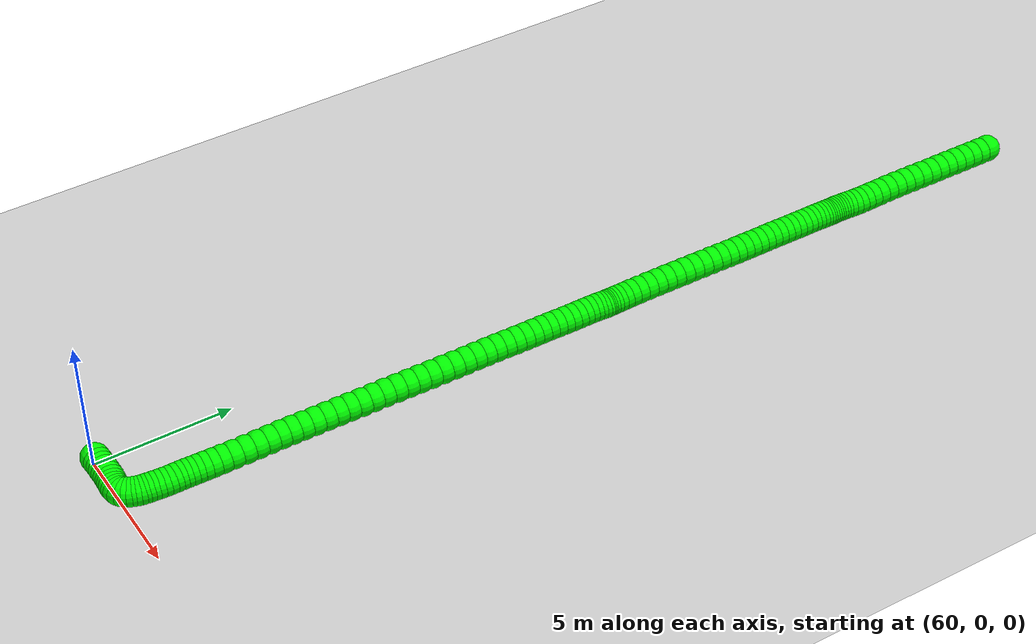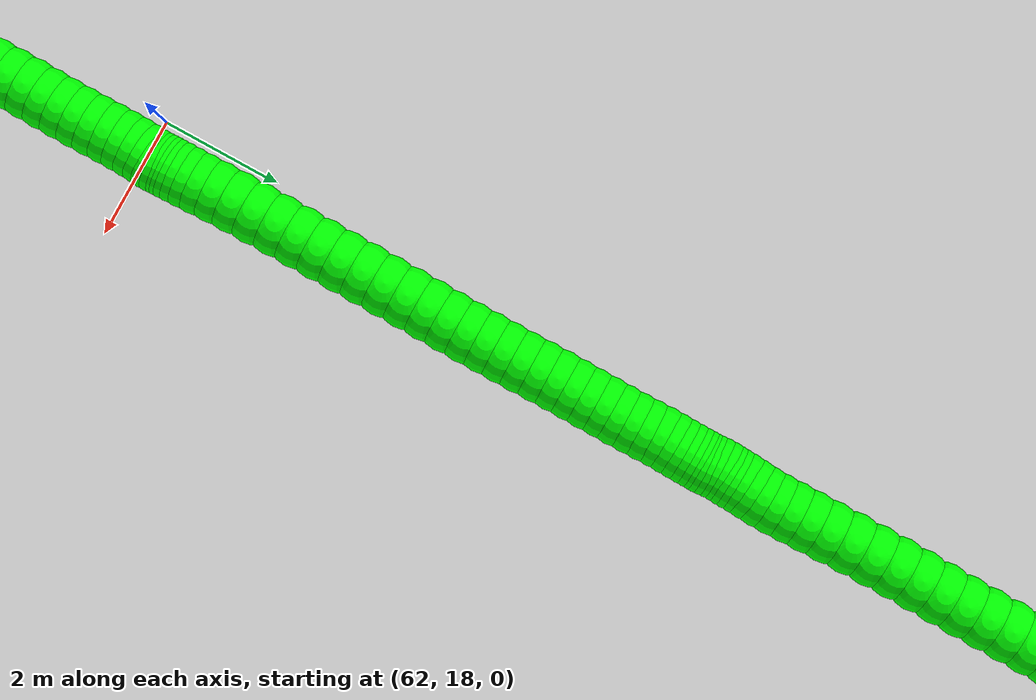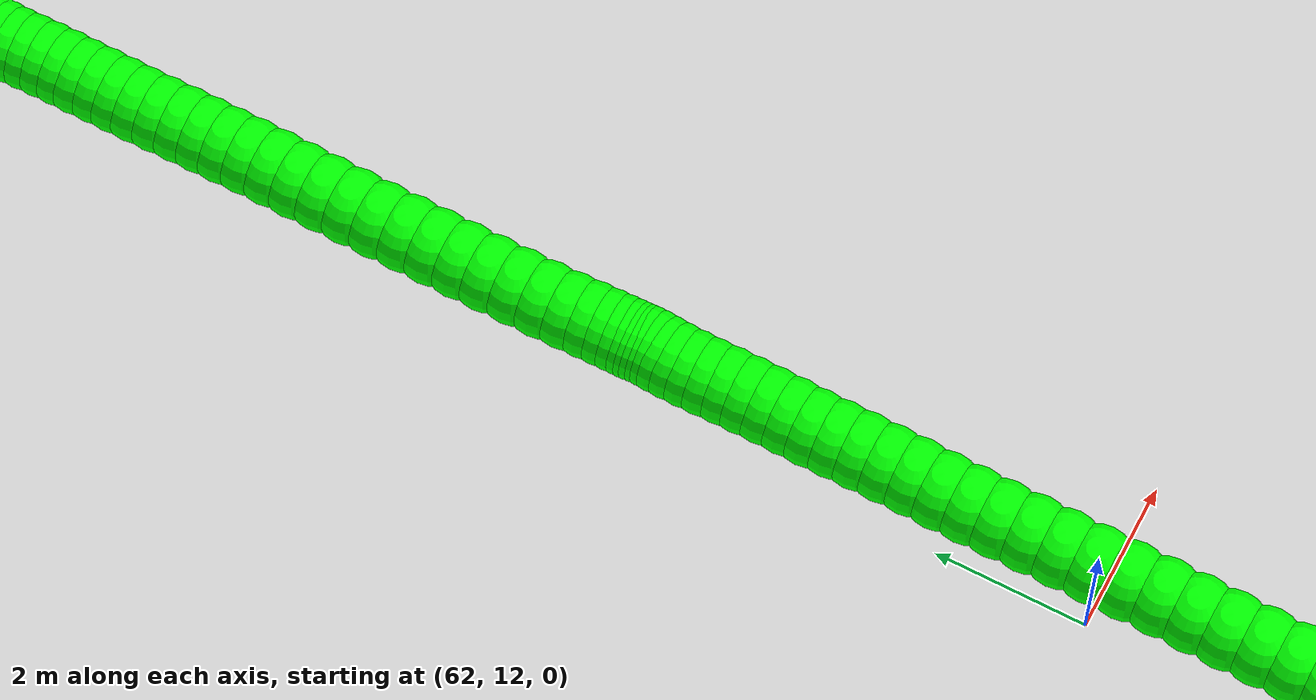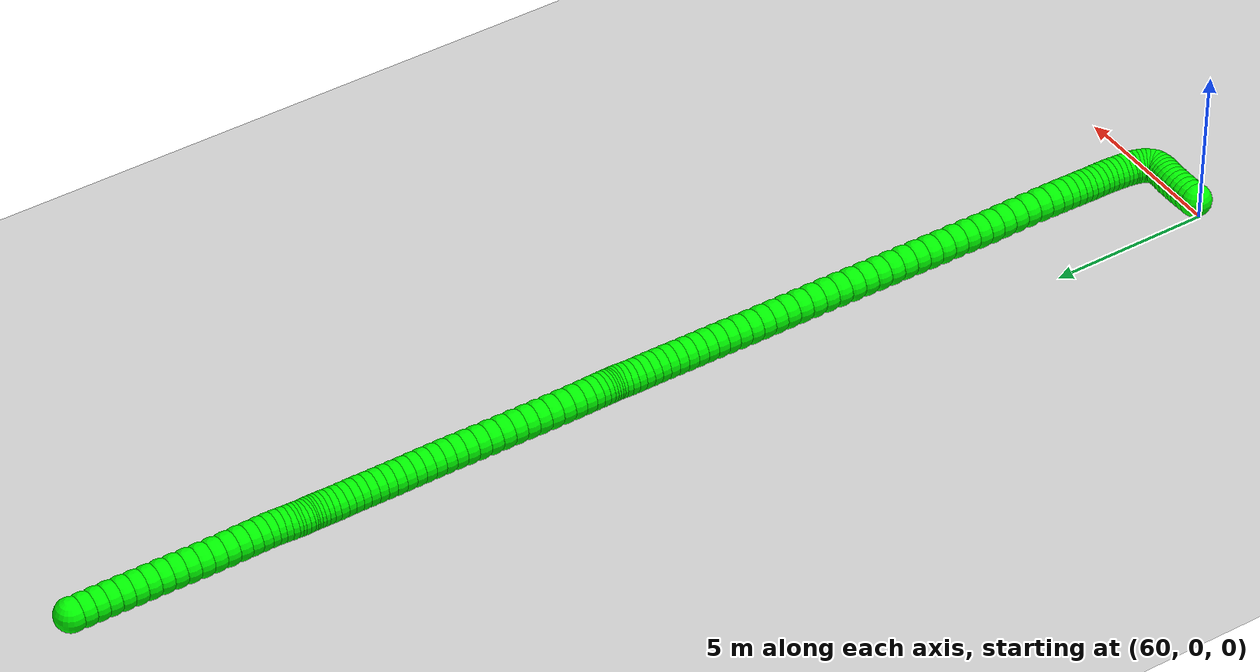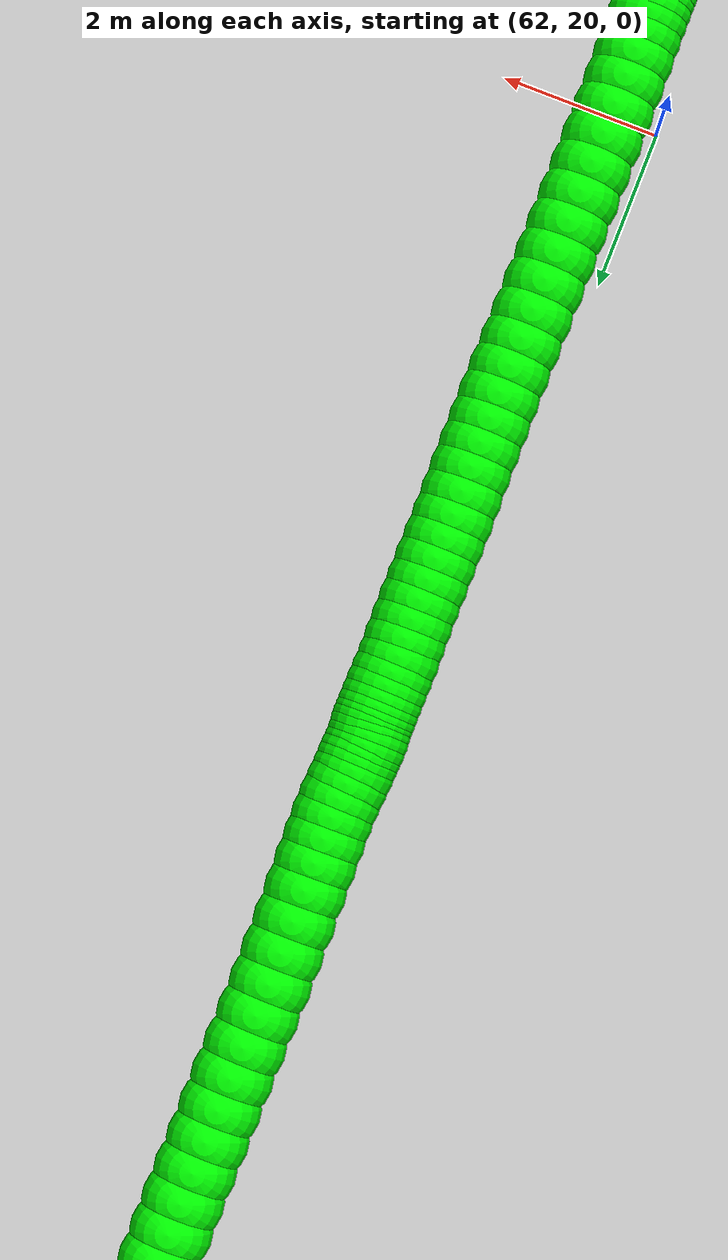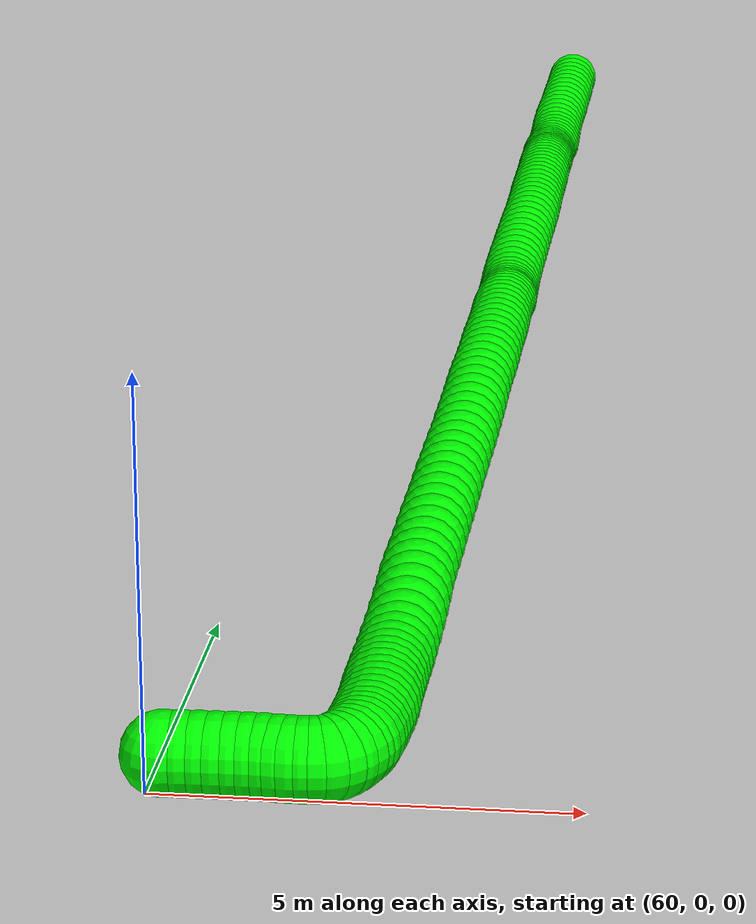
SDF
<sdf version="1.6">
 <world name="default">
  <include><uri>model://sun</uri></include>
  <include><uri>model://ground_plane</uri></include>
  <model name="marker_406">
   <static>true</static>
   <link name="link">
    <visual name="visual">
     <geometry><sphere><radius>0.5</radius></sphere></geometry>
     <material><ambient>0 1 0 1</ambient><diffuse>0 1 0 1</diffuse></material>
     <pose>62.68645742382694 35.282340442916734 0.5 0 0 0</pose>
    </visual>
   </link>
  </model>
  <model name="marker_407">
   <static>true</static>
   <link name="link">
    <visual name="visual">
     <geometry><sphere><radius>0.5</radius></sphere></geometry>
     <material><ambient>0 1 0 1</ambient><diffuse>0 1 0 1</diffuse></material>
     <pose>62.68324065988651 34.90275394296371 0.5 0 0 0</pose>
    </visual>
   </link>
  </model>
  <model name="marker_408">
   <static>true</static>
   <link name="link">
    <visual name="visual">
     <geometry><sphere><radius>0.5</radius></sphere></geometry>
     <material><ambient>0 1 0 1</ambient><diffuse>0 1 0 1</diffuse></material>
     <pose>62.68324065988651 34.52194165236866 0.5 0 0 0</pose>
    </visual>
   </link>
  </model>
  <model name="marker_409">
   <static>true</static>
   <link name="link">
    <visual name="visual">
     <geometry><sphere><radius>0.5</radius></sphere></geometry>
     <material><ambient>0 1 0 1</ambient><diffuse>0 1 0 1</diffuse></material>
     <pose>62.683470428758056 34.138269183620984 0.5 0 0 0</pose>
    </visual>
   </link>
  </model>
  <model name="marker_410">
   <static>true</static>
   <link name="link">
    <visual name="visual">
     <geometry><sphere><radius>0.5</radius></sphere></geometry>
     <material><ambient>0 1 0 1</ambient><diffuse>0 1 0 1</diffuse></material>
     <pose>62.678415513975885 33.75377952112889 0.5 0 0 0</pose>
    </visual>
   </link>
  </model>
  <model name="marker_411">
   <static>true</static>
   <link name="link">
    <visual name="visual">
     <geometry><sphere><radius>0.5</radius></sphere></geometry>
     <material><ambient>0 1 0 1</ambient><diffuse>0 1 0 1</diffuse></material>
     <pose>62.67221175496659 33.363569502331536 0.5 0 0 0</pose>
    </visual>
   </link>
  </model>
  <model name="marker_412">
   <static>true</static>
   <link name="link">
    <visual name="visual">
     <geometry><sphere><radius>0.5</radius></sphere></geometry>
     <material><ambient>0 1 0 1</ambient><diffuse>0 1 0 1</diffuse></material>
     <pose>62.66991406644705 32.97254228977525 0.5 0 0 0</pose>
    </visual>
   </link>
  </model>
  <model name="marker_413">
   <static>true</static>
   <link name="link">
    <visual name="visual">
     <geometry><sphere><radius>0.5</radius></sphere></geometry>
     <material><ambient>0 1 0 1</ambient><diffuse>0 1 0 1</diffuse></material>
     <pose>62.668535453315734 32.57375173653452 0.5 0 0 0</pose>
    </visual>
   </link>
  </model>
  <model name="marker_414">
   <static>true</static>
   <link name="link">
    <visual name="visual">
     <geometry><sphere><radius>0.5</radius></sphere></geometry>
     <material><ambient>0 1 0 1</ambient><diffuse>0 1 0 1</diffuse></material>
     <pose>62.66072331233623 32.178229958322255 0.5 0 0 0</pose>
    </visual>
   </link>
  </model>
  <model name="marker_415">
   <static>true</static>
   <link name="link">
    <visual name="visual">
     <geometry><sphere><radius>0.5</radius></sphere></geometry>
     <material><ambient>0 1 0 1</ambient><diffuse>0 1 0 1</diffuse></material>
     <pose>62.65268140251783 31.776579226936153 0.5 0 0 0</pose>
    </visual>
   </link>
  </model>
  <model name="marker_416">
   <static>true</static>
   <link name="link">
    <visual name="visual">
     <geometry><sphere><radius>0.5</radius></sphere></geometry>
     <material><ambient>0 1 0 1</ambient><diffuse>0 1 0 1</diffuse></material>
     <pose>62.6460181057981 31.383509029993423 0.5 0 0 0</pose>
    </visual>
   </link>
  </model>
  <model name="marker_417">
   <static>true</static>
   <link name="link">
    <visual name="visual">
     <geometry><sphere><radius>0.5</radius></sphere></geometry>
     <material><ambient>0 1 0 1</ambient><diffuse>0 1 0 1</diffuse></material>
     <pose>62.647396718896765 30.988804445532836 0.5 0 0 0</pose>
    </visual>
   </link>
  </model>
  <model name="marker_418">
   <static>true</static>
   <link name="link">
    <visual name="visual">
     <geometry><sphere><radius>0.5</radius></sphere></geometry>
     <material><ambient>0 1 0 1</ambient><diffuse>0 1 0 1</diffuse></material>
     <pose>62.64877533202808 30.5904224891752 0.5 0 0 0</pose>
    </visual>
   </link>
  </model>
  <model name="marker_419">
   <static>true</static>
   <link name="link">
    <visual name="visual">
     <geometry><sphere><radius>0.5</radius></sphere></geometry>
     <material><ambient>0 1 0 1</ambient><diffuse>0 1 0 1</diffuse></material>
     <pose>62.65865539268823 30.201846857888448 0.5 0 0 0</pose>
    </visual>
   </link>
  </model>
  <model name="marker_420">
   <static>true</static>
   <link name="link">
    <visual name="visual">
     <geometry><sphere><radius>0.5</radius></sphere></geometry>
     <material><ambient>0 1 0 1</ambient><diffuse>0 1 0 1</diffuse></material>
     <pose>62.66508892053642 29.85535670507416 0.5 0 0 0</pose>
    </visual>
   </link>
  </model>
  <model name="marker_421">
   <static>true</static>
   <link name="link">
    <visual name="visual">
     <geometry><sphere><radius>0.5</radius></sphere></geometry>
     <material><ambient>0 1 0 1</ambient><diffuse>0 1 0 1</diffuse></material>
     <pose>62.67060337299638 29.54850044945554 0.5 0 0 0</pose>
    </visual>
   </link>
  </model>
  <model name="marker_422">
   <static>true</static>
   <link name="link">
    <visual name="visual">
     <geometry><sphere><radius>0.5</radius></sphere></geometry>
     <material><ambient>0 1 0 1</ambient><diffuse>0 1 0 1</diffuse></material>
     <pose>62.674968981196564 29.276374928493514 0.5 0 0 0</pose>
    </visual>
   </link>
  </model>
  <model name="marker_423">
   <static>true</static>
   <link name="link">
    <visual name="visual">
     <geometry><sphere><radius>0.5</radius></sphere></geometry>
     <material><ambient>0 1 0 1</ambient><diffuse>0 1 0 1</diffuse></material>
     <pose>62.66968429760815 29.043474707851324 0.5 0 0 0</pose>
    </visual>
   </link>
  </model>
  <model name="marker_424">
   <static>true</static>
   <link name="link">
    <visual name="visual">
     <geometry><sphere><radius>0.5</radius></sphere></geometry>
     <material><ambient>0 1 0 1</ambient><diffuse>0 1 0 1</diffuse></material>
     <pose>62.65520885987627 28.837950478057117 0.5 0 0 0</pose>
    </visual>
   </link>
  </model>
  <model name="marker_425">
   <static>true</static>
   <link name="link">
    <visual name="visual">
     <geometry><sphere><radius>0.5</radius></sphere></geometry>
     <material><ambient>0 1 0 1</ambient><diffuse>0 1 0 1</diffuse></material>
     <pose>62.6418822664368 28.659802239110903 0.5 0 0 0</pose>
    </visual>
   </link>
  </model>
  <model name="marker_426">
   <static>true</static>
   <link name="link">
    <visual name="visual">
     <geometry><sphere><radius>0.5</radius></sphere></geometry>
     <material><ambient>0 1 0 1</ambient><diffuse>0 1 0 1</diffuse></material>
     <pose>62.63820596478594 28.52864264116896 0.5 0 0 0</pose>
    </visual>
   </link>
  </model>
  <model name="marker_427">
   <static>true</static>
   <link name="link">
    <visual name="visual">
     <geometry><sphere><radius>0.5</radius></sphere></geometry>
     <material><ambient>0 1 0 1</ambient><diffuse>0 1 0 1</diffuse></material>
     <pose>62.63361058774686 28.433848165401482 0.5 0 0 0</pose>
    </visual>
   </link>
  </model>
  <model name="marker_428">
   <static>true</static>
   <link name="link">
    <visual name="visual">
     <geometry><sphere><radius>0.5</radius></sphere></geometry>
     <material><ambient>0 1 0 1</ambient><diffuse>0 1 0 1</diffuse></material>
     <pose>62.62510914021803 28.325978589527388 0.5 0 0 0</pose>
    </visual>
   </link>
  </model>
  <model name="marker_429">
   <static>true</static>
   <link name="link">
    <visual name="visual">
     <geometry><sphere><radius>0.5</radius></sphere></geometry>
     <material><ambient>0 1 0 1</ambient><diffuse>0 1 0 1</diffuse></material>
     <pose>62.625798446767355 28.208302688567894 0.5 0 0 0</pose>
    </visual>
   </link>
  </model>
  <model name="marker_430">
   <static>true</static>
   <link name="link">
    <visual name="visual">
     <geometry><sphere><radius>0.5</radius></sphere></geometry>
     <material><ambient>0 1 0 1</ambient><diffuse>0 1 0 1</diffuse></material>
     <pose>62.6340701254573 28.100024515810706 0.5 0 0 0</pose>
    </visual>
   </link>
  </model>
  <model name="marker_431">
   <static>true</static>
   <link name="link">
    <visual name="visual">
     <geometry><sphere><radius>0.5</radius></sphere></geometry>
     <material><ambient>0 1 0 1</ambient><diffuse>0 1 0 1</diffuse></material>
     <pose>62.63866550249638 28.01707934951507 0.5 0 0 0</pose>
    </visual>
   </link>
  </model>
  <model name="marker_432">
   <static>true</static>
   <link name="link">
    <visual name="visual">
     <geometry><sphere><radius>0.5</radius></sphere></geometry>
     <material><ambient>0 1 0 1</ambient><diffuse>0 1 0 1</diffuse></material>
     <pose>62.63636781397685 27.94516629893234 0.5 0 0 0</pose>
    </visual>
   </link>
  </model>
  <model name="marker_433">
   <static>true</static>
   <link name="link">
    <visual name="visual">
     <geometry><sphere><radius>0.5</radius></sphere></geometry>
     <material><ambient>0 1 0 1</ambient><diffuse>0 1 0 1</diffuse></material>
     <pose>62.63567850742751 27.847920241888062 0.5 0 0 0</pose>
    </visual>
   </link>
  </model>
  <model name="marker_434">
   <static>true</static>
   <link name="link">
    <visual name="visual">
     <geometry><sphere><radius>0.5</radius></sphere></geometry>
     <material><ambient>0 1 0 1</ambient><diffuse>0 1 0 1</diffuse></material>
     <pose>62.63384035658576 27.726566969031524 0.5 0 0 0</pose>
    </visual>
   </link>
  </model>
  <model name="marker_435">
   <static>true</static>
   <link name="link">
    <visual name="visual">
     <geometry><sphere><radius>0.5</radius></sphere></geometry>
     <material><ambient>0 1 0 1</ambient><diffuse>0 1 0 1</diffuse></material>
     <pose>62.63154266806621 27.579472092837598 0.5 0 0 0</pose>
    </visual>
   </link>
  </model>
  <model name="marker_436">
   <static>true</static>
   <link name="link">
    <visual name="visual">
     <geometry><sphere><radius>0.5</radius></sphere></geometry>
     <material><ambient>0 1 0 1</ambient><diffuse>0 1 0 1</diffuse></material>
     <pose>62.62671752215559 27.409087194575825 0.5 0 0 0</pose>
    </visual>
   </link>
  </model>
  <model name="marker_437">
   <static>true</static>
   <link name="link">
    <visual name="visual">
     <geometry><sphere><radius>0.5</radius></sphere></geometry>
     <material><ambient>0 1 0 1</ambient><diffuse>0 1 0 1</diffuse></material>
     <pose>62.62235191398804 27.206423142926994 0.5 0 0 0</pose>
    </visual>
   </link>
  </model>
  <model name="marker_438">
   <static>true</static>
   <link name="link">
    <visual name="visual">
     <geometry><sphere><radius>0.5</radius></sphere></geometry>
     <material><ambient>0 1 0 1</ambient><diffuse>0 1 0 1</diffuse></material>
     <pose>62.6280961352869 26.980060472341737 0.5 0 0 0</pose>
    </visual>
   </link>
  </model>
  <model name="marker_439">
   <static>true</static>
   <link name="link">
    <visual name="visual">
     <geometry><sphere><radius>0.5</radius></sphere></geometry>
     <material><ambient>0 1 0 1</ambient><diffuse>0 1 0 1</diffuse></material>
     <pose>62.63154266806621 26.738988314132005 0.5 0 0 0</pose>
    </visual>
   </link>
  </model>
  <model name="marker_440">
   <static>true</static>
   <link name="link">
    <visual name="visual">
     <geometry><sphere><radius>0.5</radius></sphere></geometry>
     <material><ambient>0 1 0 1</ambient><diffuse>0 1 0 1</diffuse></material>
     <pose>62.63315105003642 26.487292637085197 0.5 0 0 0</pose>
    </visual>
   </link>
  </model>
  <model name="marker_441">
   <static>true</static>
   <link name="link">
    <visual name="visual">
     <geometry><sphere><radius>0.5</radius></sphere></geometry>
     <material><ambient>0 1 0 1</ambient><diffuse>0 1 0 1</diffuse></material>
     <pose>62.62901521070777 26.229059409988714 0.5 0 0 0</pose>
    </visual>
   </link>
  </model>
  <model name="marker_442">
   <static>true</static>
   <link name="link">
    <visual name="visual">
     <geometry><sphere><radius>0.5</radius></sphere></geometry>
     <material><ambient>0 1 0 1</ambient><diffuse>0 1 0 1</diffuse></material>
     <pose>62.62901521070777 25.95734248590253 0.5 0 0 0</pose>
    </visual>
   </link>
  </model>
  <model name="marker_443">
   <static>true</static>
   <link name="link">
    <visual name="visual">
     <geometry><sphere><radius>0.5</radius></sphere></geometry>
     <material><ambient>0 1 0 1</ambient><diffuse>0 1 0 1</diffuse></material>
     <pose>62.626257984477796 25.678679414890826 0.5 0 0 0</pose>
    </visual>
   </link>
  </model>
  <model name="marker_444">
   <static>true</static>
   <link name="link">
    <visual name="visual">
     <geometry><sphere><radius>0.5</radius></sphere></geometry>
     <material><ambient>0 1 0 1</ambient><diffuse>0 1 0 1</diffuse></material>
     <pose>62.62350075824782 25.391027212552657 0.5 0 0 0</pose>
    </visual>
   </link>
  </model>
  <model name="marker_445">
   <static>true</static>
   <link name="link">
    <visual name="visual">
     <geometry><sphere><radius>0.5</radius></sphere></geometry>
     <material><ambient>0 1 0 1</ambient><diffuse>0 1 0 1</diffuse></material>
     <pose>62.62671752215559 25.090299910107877 0.5 0 0 0</pose>
    </visual>
   </link>
  </model>
  <model name="marker_446">
   <static>true</static>
   <link name="link">
    <visual name="visual">
     <geometry><sphere><radius>0.5</radius></sphere></geometry>
     <material><ambient>0 1 0 1</ambient><diffuse>0 1 0 1</diffuse></material>
     <pose>62.63154266806621 24.77649750756374 0.5 0 0 0</pose>
    </visual>
   </link>
  </model>
  <model name="marker_447">
   <static>true</static>
   <link name="link">
    <visual name="visual">
     <geometry><sphere><radius>0.5</radius></sphere></geometry>
     <material><ambient>0 1 0 1</ambient><diffuse>0 1 0 1</diffuse></material>
     <pose>62.63223197461555 24.46269510501235 0.5 0 0 0</pose>
    </visual>
   </link>
  </model>
  <model name="marker_448">
   <static>true</static>
   <link name="link">
    <visual name="visual">
     <geometry><sphere><radius>0.5</radius></sphere></geometry>
     <material><ambient>0 1 0 1</ambient><diffuse>0 1 0 1</diffuse></material>
     <pose>62.63177243693776 24.144398136797722 0.5 0 0 0</pose>
    </visual>
   </link>
  </model>
  <model name="marker_449">
   <static>true</static>
   <link name="link">
    <visual name="visual">
     <geometry><sphere><radius>0.5</radius></sphere></geometry>
     <material><ambient>0 1 0 1</ambient><diffuse>0 1 0 1</diffuse></material>
     <pose>62.63361058774686 23.81752063414698 0.5 0 0 0</pose>
    </visual>
   </link>
  </model>
  <model name="marker_450">
   <static>true</static>
   <link name="link">
    <visual name="visual">
     <geometry><sphere><radius>0.5</radius></sphere></geometry>
     <material><ambient>0 1 0 1</ambient><diffuse>0 1 0 1</diffuse></material>
     <pose>62.629934286096 23.469804690690665 0.5 0 0 0</pose>
    </visual>
   </link>
  </model>
  <model name="marker_451">
   <static>true</static>
   <link name="link">
    <visual name="visual">
     <geometry><sphere><radius>0.5</radius></sphere></geometry>
     <material><ambient>0 1 0 1</ambient><diffuse>0 1 0 1</diffuse></material>
     <pose>62.62235191398804 23.10983084089393 0.5 0 0 0</pose>
    </visual>
   </link>
  </model>
  <model name="marker_452">
   <static>true</static>
   <link name="link">
    <visual name="visual">
     <geometry><sphere><radius>0.5</radius></sphere></geometry>
     <material><ambient>0 1 0 1</ambient><diffuse>0 1 0 1</diffuse></material>
     <pose>62.61729699920588 22.73719048786642 0.5 0 0 0</pose>
    </visual>
   </link>
  </model>
  <model name="marker_453">
   <static>true</static>
   <link name="link">
    <visual name="visual">
     <geometry><sphere><radius>0.5</radius></sphere></geometry>
     <material><ambient>0 1 0 1</ambient><diffuse>0 1 0 1</diffuse></material>
     <pose>62.613390928716115 22.349840647221697 0.5 0 0 0</pose>
    </visual>
   </link>
  </model>
  <model name="marker_454">
   <static>true</static>
   <link name="link">
    <visual name="visual">
     <geometry><sphere><radius>0.5</radius></sphere></geometry>
     <material><ambient>0 1 0 1</ambient><diffuse>0 1 0 1</diffuse></material>
     <pose>62.607187169706826 21.961673612818043 0.5 0 0 0</pose>
    </visual>
   </link>
  </model>
  <model name="marker_455">
   <static>true</static>
   <link name="link">
    <visual name="visual">
     <geometry><sphere><radius>0.5</radius></sphere></geometry>
     <material><ambient>0 1 0 1</ambient><diffuse>0 1 0 1</diffuse></material>
     <pose>62.605808556575504 21.57309798153129 0.5 0 0 0</pose>
    </visual>
   </link>
  </model>
  <model name="marker_456">
   <static>true</static>
   <link name="link">
    <visual name="visual">
     <geometry><sphere><radius>0.5</radius></sphere></geometry>
     <material><ambient>0 1 0 1</ambient><diffuse>0 1 0 1</diffuse></material>
     <pose>62.6021322549573 21.184930947127636 0.5 0 0 0</pose>
    </visual>
   </link>
  </model>
  <model name="marker_457">
   <static>true</static>
   <link name="link">
    <visual name="visual">
     <geometry><sphere><radius>0.5</radius></sphere></geometry>
     <material><ambient>0 1 0 1</ambient><diffuse>0 1 0 1</diffuse></material>
     <pose>62.59868572214534 20.797172509607076 0.5 0 0 0</pose>
    </visual>
   </link>
  </model>
  <model name="marker_458">
   <static>true</static>
   <link name="link">
    <visual name="visual">
     <geometry><sphere><radius>0.5</radius></sphere></geometry>
     <material><ambient>0 1 0 1</ambient><diffuse>0 1 0 1</diffuse></material>
     <pose>62.59569872707647 20.41390863774249 0.5 0 0 0</pose>
    </visual>
   </link>
  </model>
  <model name="marker_459">
   <static>true</static>
   <link name="link">
    <visual name="visual">
     <geometry><sphere><radius>0.5</radius></sphere></geometry>
     <material><ambient>0 1 0 1</ambient><diffuse>0 1 0 1</diffuse></material>
     <pose>62.59638803362579 20.02860178148421 0.5 0 0 0</pose>
    </visual>
   </link>
  </model>
  <model name="marker_460">
   <static>true</static>
   <link name="link">
    <visual name="visual">
     <geometry><sphere><radius>0.5</radius></sphere></geometry>
     <material><ambient>0 1 0 1</ambient><diffuse>0 1 0 1</diffuse></material>
     <pose>62.59661780249735 19.65718721909147 0.5 0 0 0</pose>
    </visual>
   </link>
  </model>
  <model name="marker_461">
   <static>true</static>
   <link name="link">
    <visual name="visual">
     <geometry><sphere><radius>0.5</radius></sphere></geometry>
     <material><ambient>0 1 0 1</ambient><diffuse>0 1 0 1</diffuse></material>
     <pose>62.60144294840797 19.318869003844714 0.5 0 0 0</pose>
    </visual>
   </link>
  </model>
  <model name="marker_462">
   <static>true</static>
   <link name="link">
    <visual name="visual">
     <geometry><sphere><radius>0.5</radius></sphere></geometry>
     <material><ambient>0 1 0 1</ambient><diffuse>0 1 0 1</diffuse></material>
     <pose>62.61040393364724 19.032033995265476 0.5 0 0 0</pose>
    </visual>
   </link>
  </model>
  <model name="marker_463">
   <static>true</static>
   <link name="link">
    <visual name="visual">
     <geometry><sphere><radius>0.5</radius></sphere></geometry>
     <material><ambient>0 1 0 1</ambient><diffuse>0 1 0 1</diffuse></material>
     <pose>62.61476954184744 18.810165890336194 0.5 0 0 0</pose>
    </visual>
   </link>
  </model>
  <model name="marker_464">
   <static>true</static>
   <link name="link">
    <visual name="visual">
     <geometry><sphere><radius>0.5</radius></sphere></geometry>
     <material><ambient>0 1 0 1</ambient><diffuse>0 1 0 1</diffuse></material>
     <pose>62.61706723036697 18.64182397646812 0.5 0 0 0</pose>
    </visual>
   </link>
  </model>
  <model name="marker_465">
   <static>true</static>
   <link name="link">
    <visual name="visual">
     <geometry><sphere><radius>0.5</radius></sphere></geometry>
     <material><ambient>0 1 0 1</ambient><diffuse>0 1 0 1</diffuse></material>
     <pose>62.61982445659696 18.51475034730632 0.5 0 0 0</pose>
    </visual>
   </link>
  </model>
  <model name="marker_466">
   <static>true</static>
   <link name="link">
    <visual name="visual">
     <geometry><sphere><radius>0.5</radius></sphere></geometry>
     <material><ambient>0 1 0 1</ambient><diffuse>0 1 0 1</diffuse></material>
     <pose>62.62028399430739 18.43303097164545 0.5 0 0 0</pose>
    </visual>
   </link>
  </model>
  <model name="marker_467">
   <static>true</static>
   <link name="link">
    <visual name="visual">
     <geometry><sphere><radius>0.5</radius></sphere></geometry>
     <material><ambient>0 1 0 1</ambient><diffuse>0 1 0 1</diffuse></material>
     <pose>62.62189237627761 18.36847266487133 0.5 0 0 0</pose>
    </visual>
   </link>
  </model>
  <model name="marker_468">
   <static>true</static>
   <link name="link">
    <visual name="visual">
     <geometry><sphere><radius>0.5</radius></sphere></geometry>
     <material><ambient>0 1 0 1</ambient><diffuse>0 1 0 1</diffuse></material>
     <pose>62.62717705986602 18.290839257990598 0.5 0 0 0</pose>
    </visual>
   </link>
  </model>
  <model name="marker_469">
   <static>true</static>
   <link name="link">
    <visual name="visual">
     <geometry><sphere><radius>0.5</radius></sphere></geometry>
     <material><ambient>0 1 0 1</ambient><diffuse>0 1 0 1</diffuse></material>
     <pose>62.62487937134647 18.182969682116507 0.5 0 0 0</pose>
    </visual>
   </link>
  </model>
  <model name="marker_470">
   <static>true</static>
   <link name="link">
    <visual name="visual">
     <geometry><sphere><radius>0.5</radius></sphere></geometry>
     <material><ambient>0 1 0 1</ambient><diffuse>0 1 0 1</diffuse></material>
     <pose>62.61270162216679 18.04118656533749 0.5 0 0 0</pose>
    </visual>
   </link>
  </model>
  <model name="marker_471">
   <static>true</static>
   <link name="link">
    <visual name="visual">
     <geometry><sphere><radius>0.5</radius></sphere></geometry>
     <material><ambient>0 1 0 1</ambient><diffuse>0 1 0 1</diffuse></material>
     <pose>62.60351086805597 17.860178148238646 0.5 0 0 0</pose>
    </visual>
   </link>
  </model>
  <model name="marker_472">
   <static>true</static>
   <link name="link">
    <visual name="visual">
     <geometry><sphere><radius>0.5</radius></sphere></geometry>
     <material><ambient>0 1 0 1</ambient><diffuse>0 1 0 1</diffuse></material>
     <pose>62.59868572214534 17.647299174635833 0.5 0 0 0</pose>
    </visual>
   </link>
  </model>
  <model name="marker_473">
   <static>true</static>
   <link name="link">
    <visual name="visual">
     <geometry><sphere><radius>0.5</radius></sphere></geometry>
     <material><ambient>0 1 0 1</ambient><diffuse>0 1 0 1</diffuse></material>
     <pose>62.59891549101688 17.408678597695637 0.5 0 0 0</pose>
    </visual>
   </link>
  </model>
  <model name="marker_474">
   <static>true</static>
   <link name="link">
    <visual name="visual">
     <geometry><sphere><radius>0.5</radius></sphere></geometry>
     <material><ambient>0 1 0 1</ambient><diffuse>0 1 0 1</diffuse></material>
     <pose>62.60305133034553 17.14881098308855 0.5 0 0 0</pose>
    </visual>
   </link>
  </model>
  <model name="marker_475">
   <static>true</static>
   <link name="link">
    <visual name="visual">
     <geometry><sphere><radius>0.5</radius></sphere></geometry>
     <material><ambient>0 1 0 1</ambient><diffuse>0 1 0 1</diffuse></material>
     <pose>62.603740636927505 16.873416687098057 0.5 0 0 0</pose>
    </visual>
   </link>
  </model>
  <model name="marker_476">
   <static>true</static>
   <link name="link">
    <visual name="visual">
     <geometry><sphere><radius>0.5</radius></sphere></geometry>
     <material><ambient>0 1 0 1</ambient><diffuse>0 1 0 1</diffuse></material>
     <pose>62.6021322549573 16.583312903490352 0.5 0 0 0</pose>
    </visual>
   </link>
  </model>
  <model name="marker_477">
   <static>true</static>
   <link name="link">
    <visual name="visual">
     <geometry><sphere><radius>0.5</radius></sphere></geometry>
     <material><ambient>0 1 0 1</ambient><diffuse>0 1 0 1</diffuse></material>
     <pose>62.59753687788556 16.282994197928666 0.5 0 0 0</pose>
    </visual>
   </link>
  </model>
  <model name="marker_478">
   <static>true</static>
   <link name="link">
    <visual name="visual">
     <geometry><sphere><radius>0.5</radius></sphere></geometry>
     <material><ambient>0 1 0 1</ambient><diffuse>0 1 0 1</diffuse></material>
     <pose>62.58903543035673 15.972460570405742 0.5 0 0 0</pose>
    </visual>
   </link>
  </model>
  <model name="marker_479">
   <static>true</static>
   <link name="link">
    <visual name="visual">
     <geometry><sphere><radius>0.5</radius></sphere></geometry>
     <material><ambient>0 1 0 1</ambient><diffuse>0 1 0 1</diffuse></material>
     <pose>62.58811635493585 15.649260439652043 0.5 0 0 0</pose>
    </visual>
   </link>
  </model>
  <model name="marker_480">
   <static>true</static>
   <link name="link">
    <visual name="visual">
     <geometry><sphere><radius>0.5</radius></sphere></geometry>
     <material><ambient>0 1 0 1</ambient><diffuse>0 1 0 1</diffuse></material>
     <pose>62.58880566151783 15.315436790061272 0.5 0 0 0</pose>
    </visual>
   </link>
  </model>
  <model name="marker_481">
   <static>true</static>
   <link name="link">
    <visual name="visual">
     <geometry><sphere><radius>0.5</radius></sphere></geometry>
     <material><ambient>0 1 0 1</ambient><diffuse>0 1 0 1</diffuse></material>
     <pose>62.585359128705875 14.963634877832074 0.5 0 0 0</pose>
    </visual>
   </link>
  </model>
  <model name="marker_482">
   <static>true</static>
   <link name="link">
    <visual name="visual">
     <geometry><sphere><radius>0.5</radius></sphere></geometry>
     <material><ambient>0 1 0 1</ambient><diffuse>0 1 0 1</diffuse></material>
     <pose>62.582372133637 14.59875786548901 0.5 0 0 0</pose>
    </visual>
   </link>
  </model>
  <model name="marker_483">
   <static>true</static>
   <link name="link">
    <visual name="visual">
     <geometry><sphere><radius>0.5</radius></sphere></geometry>
     <material><ambient>0 1 0 1</ambient><diffuse>0 1 0 1</diffuse></material>
     <pose>62.57180276642752 14.218762768652892 0.5 0 0 0</pose>
    </visual>
   </link>
  </model>
  <model name="marker_484">
   <static>true</static>
   <link name="link">
    <visual name="visual">
     <geometry><sphere><radius>0.5</radius></sphere></geometry>
     <material><ambient>0 1 0 1</ambient><diffuse>0 1 0 1</diffuse></material>
     <pose>62.566518082806446 13.831412928008167 0.5 0 0 0</pose>
    </visual>
   </link>
  </model>
  <model name="marker_485">
   <static>true</static>
   <link name="link">
    <visual name="visual">
     <geometry><sphere><radius>0.5</radius></sphere></geometry>
     <material><ambient>0 1 0 1</ambient><diffuse>0 1 0 1</diffuse></material>
     <pose>62.5644501631258 13.439159924817112 0.5 0 0 0</pose>
    </visual>
   </link>
  </model>
  <model name="marker_486">
   <static>true</static>
   <link name="link">
    <visual name="visual">
     <geometry><sphere><radius>0.5</radius></sphere></geometry>
     <material><ambient>0 1 0 1</ambient><diffuse>0 1 0 1</diffuse></material>
     <pose>62.56582877625711 13.025659883959168 0.5 0 0 0</pose>
    </visual>
   </link>
  </model>
  <model name="marker_487">
   <static>true</static>
   <link name="link">
    <visual name="visual">
     <geometry><sphere><radius>0.5</radius></sphere></geometry>
     <material><ambient>0 1 0 1</ambient><diffuse>0 1 0 1</diffuse></material>
     <pose>62.565599007385565 12.608073874321082 0.5 0 0 0</pose>
    </visual>
   </link>
  </model>
  <model name="marker_488">
   <static>true</static>
   <link name="link">
    <visual name="visual">
     <geometry><sphere><radius>0.5</radius></sphere></geometry>
     <material><ambient>0 1 0 1</ambient><diffuse>0 1 0 1</diffuse></material>
     <pose>62.563301318866024 12.173735392664826 0.5 0 0 0</pose>
    </visual>
   </link>
  </model>
  <model name="marker_489">
   <static>true</static>
   <link name="link">
    <visual name="visual">
     <geometry><sphere><radius>0.5</radius></sphere></geometry>
     <material><ambient>0 1 0 1</ambient><diffuse>0 1 0 1</diffuse></material>
     <pose>62.5584761729554 11.735310942228427 0.5 0 0 0</pose>
    </visual>
   </link>
  </model>
  <model name="marker_490">
   <static>true</static>
   <link name="link">
    <visual name="visual">
     <geometry><sphere><radius>0.5</radius></sphere></geometry>
     <material><ambient>0 1 0 1</ambient><diffuse>0 1 0 1</diffuse></material>
     <pose>62.556867790985194 11.289531747976165 0.5 0 0 0</pose>
    </visual>
   </link>
  </model>
  <model name="marker_491">
   <static>true</static>
   <link name="link">
    <visual name="visual">
     <geometry><sphere><radius>0.5</radius></sphere></geometry>
     <material><ambient>0 1 0 1</ambient><diffuse>0 1 0 1</diffuse></material>
     <pose>62.54859611229525 10.849064313153326 0.5 0 0 0</pose>
    </visual>
   </link>
  </model>
  <model name="marker_492">
   <static>true</static>
   <link name="link">
    <visual name="visual">
     <geometry><sphere><radius>0.5</radius></sphere></geometry>
     <material><ambient>0 1 0 1</ambient><diffuse>0 1 0 1</diffuse></material>
     <pose>62.54009466476641 10.405328103294762 0.5 0 0 0</pose>
    </visual>
   </link>
  </model>
  <model name="marker_493">
   <static>true</static>
   <link name="link">
    <visual name="visual">
     <geometry><sphere><radius>0.5</radius></sphere></geometry>
     <material><ambient>0 1 0 1</ambient><diffuse>0 1 0 1</diffuse></material>
     <pose>62.535269518855785 9.96118329656036 0.5 0 0 0</pose>
    </visual>
   </link>
  </model>
  <model name="marker_494">
   <static>true</static>
   <link name="link">
    <visual name="visual">
     <geometry><sphere><radius>0.5</radius></sphere></geometry>
     <material><ambient>0 1 0 1</ambient><diffuse>0 1 0 1</diffuse></material>
     <pose>62.526078764744966 9.521941652365031 0.5 0 0 0</pose>
    </visual>
   </link>
  </model>
  <model name="marker_495">
   <static>true</static>
   <link name="link">
    <visual name="visual">
     <geometry><sphere><radius>0.5</radius></sphere></geometry>
     <material><ambient>0 1 0 1</ambient><diffuse>0 1 0 1</diffuse></material>
     <pose>62.52401084509697 9.079022636272656 0.5 0 0 0</pose>
    </visual>
   </link>
  </model>
  <model name="marker_496">
   <static>true</static>
   <link name="link">
    <visual name="visual">
     <geometry><sphere><radius>0.5</radius></sphere></geometry>
     <material><ambient>0 1 0 1</ambient><diffuse>0 1 0 1</diffuse></material>
     <pose>62.52102384999544 8.631200457633952 0.5 0 0 0</pose>
    </visual>
   </link>
  </model>
  <model name="marker_497">
   <static>true</static>
   <link name="link">
    <visual name="visual">
     <geometry><sphere><radius>0.5</radius></sphere></geometry>
     <material><ambient>0 1 0 1</ambient><diffuse>0 1 0 1</diffuse></material>
     <pose>62.51436055327571 8.194001797825063 0.5 0 0 0</pose>
    </visual>
   </link>
  </model>
  <model name="marker_498">
   <static>true</static>
   <link name="link">
    <visual name="visual">
     <geometry><sphere><radius>0.5</radius></sphere></geometry>
     <material><ambient>0 1 0 1</ambient><diffuse>0 1 0 1</diffuse></material>
     <pose>62.50723771884553 7.764975075590972 0.5 0 0 0</pose>
    </visual>
   </link>
  </model>
  <model name="marker_499">
   <static>true</static>
   <link name="link">
    <visual name="visual">
     <geometry><sphere><radius>0.5</radius></sphere></geometry>
     <material><ambient>0 1 0 1</ambient><diffuse>0 1 0 1</diffuse></material>
     <pose>62.502182804096016 7.333088175211509 0.5 0 0 0</pose>
    </visual>
   </link>
  </model>
  <model name="marker_500">
   <static>true</static>
   <link name="link">
    <visual name="visual">
     <geometry><sphere><radius>0.5</radius></sphere></geometry>
     <material><ambient>0 1 0 1</ambient><diffuse>0 1 0 1</diffuse></material>
     <pose>62.5005744221258 6.8962981122857165 0.5 0 0 0</pose>
    </visual>
   </link>
  </model>
  <model name="marker_501">
   <static>true</static>
   <link name="link">
    <visual name="visual">
     <geometry><sphere><radius>0.5</radius></sphere></geometry>
     <material><ambient>0 1 0 1</ambient><diffuse>0 1 0 1</diffuse></material>
     <pose>62.49322181885674 6.4631854212642255 0.5 0 0 0</pose>
    </visual>
   </link>
  </model>
  <model name="marker_502">
   <static>true</static>
   <link name="link">
    <visual name="visual">
     <geometry><sphere><radius>0.5</radius></sphere></geometry>
     <material><ambient>0 1 0 1</ambient><diffuse>0 1 0 1</diffuse></material>
     <pose>62.484490602456354 6.048868186647349 0.5 0 0 0</pose>
    </visual>
   </link>
  </model>
  <model name="marker_503">
   <static>true</static>
   <link name="link">
    <visual name="visual">
     <geometry><sphere><radius>0.5</radius></sphere></geometry>
     <material><ambient>0 1 0 1</ambient><diffuse>0 1 0 1</diffuse></material>
     <pose>62.48150360735484 5.6451744708675475 0.5 0 0 0</pose>
    </visual>
   </link>
  </model>
  <model name="marker_504">
   <static>true</static>
   <link name="link">
    <visual name="visual">
     <geometry><sphere><radius>0.5</radius></sphere></geometry>
     <material><ambient>0 1 0 1</ambient><diffuse>0 1 0 1</diffuse></material>
     <pose>62.49000505491632 5.226771267470531 0.5 0 0 0</pose>
    </visual>
   </link>
  </model>
  <model name="marker_505">
   <static>true</static>
   <link name="link">
    <visual name="visual">
     <geometry><sphere><radius>0.5</radius></sphere></geometry>
     <material><ambient>0 1 0 1</ambient><diffuse>0 1 0 1</diffuse></material>
     <pose>62.49574927621517 4.790389801427833 0.5 0 0 0</pose>
    </visual>
   </link>
  </model>
  <model name="marker_506">
   <static>true</static>
   <link name="link">
    <visual name="visual">
     <geometry><sphere><radius>0.5</radius></sphere></geometry>
     <material><ambient>0 1 0 1</ambient><diffuse>0 1 0 1</diffuse></material>
     <pose>62.49850650244515 4.342159025906033 0.5 0 0 0</pose>
    </visual>
   </link>
  </model>
  <model name="marker_507">
   <static>true</static>
   <link name="link">
    <visual name="visual">
     <geometry><sphere><radius>0.5</radius></sphere></geometry>
     <material><ambient>0 1 0 1</ambient><diffuse>0 1 0 1</diffuse></material>
     <pose>62.49965534670493 3.9029173817107043 0.5 0 0 0</pose>
    </visual>
   </link>
  </model>
  <model name="marker_508">
   <static>true</static>
   <link name="link">
    <visual name="visual">
     <geometry><sphere><radius>0.5</radius></sphere></geometry>
     <material><ambient>0 1 0 1</ambient><diffuse>0 1 0 1</diffuse></material>
     <pose>62.494140894244964 3.5069870066226048 0.5 0 0 0</pose>
    </visual>
   </link>
  </model>
  <model name="marker_509">
   <static>true</static>
   <link name="link">
    <visual name="visual">
     <geometry><sphere><radius>0.5</radius></sphere></geometry>
     <material><ambient>0 1 0 1</ambient><diffuse>0 1 0 1</diffuse></material>
     <pose>62.49230274343586 3.1678515976169233 0.5 0 0 0</pose>
    </visual>
   </link>
  </model>
  <model name="marker_510">
   <static>true</static>
   <link name="link">
    <visual name="visual">
     <geometry><sphere><radius>0.5</radius></sphere></geometry>
     <material><ambient>0 1 0 1</ambient><diffuse>0 1 0 1</diffuse></material>
     <pose>62.485639446716135 2.8830595734241253 0.5 0 0 0</pose>
    </visual>
   </link>
  </model>
  <model name="marker_511">
   <static>true</static>
   <link name="link">
    <visual name="visual">
     <geometry><sphere><radius>0.5</radius></sphere></geometry>
     <material><ambient>0 1 0 1</ambient><diffuse>0 1 0 1</diffuse></material>
     <pose>62.478057074575524 2.6415788183385565 0.5 0 0 0</pose>
    </visual>
   </link>
  </model>
  <model name="marker_512">
   <static>true</static>
   <link name="link">
    <visual name="visual">
     <geometry><sphere><radius>0.5</radius></sphere></geometry>
     <material><ambient>0 1 0 1</ambient><diffuse>0 1 0 1</diffuse></material>
     <pose>62.475070079506644 2.4307428291294437 0.5 0 0 0</pose>
    </visual>
   </link>
  </model>
  <model name="marker_513">
   <static>true</static>
   <link name="link">
    <visual name="visual">
     <geometry><sphere><radius>0.5</radius></sphere></geometry>
     <material><ambient>0 1 0 1</ambient><diffuse>0 1 0 1</diffuse></material>
     <pose>62.47001516475712 2.2472828307610615 0.5 0 0 0</pose>
    </visual>
   </link>
  </model>
  <model name="marker_514">
   <static>true</static>
   <link name="link">
    <visual name="visual">
     <geometry><sphere><radius>0.5</radius></sphere></geometry>
     <material><ambient>0 1 0 1</ambient><diffuse>0 1 0 1</diffuse></material>
     <pose>62.465419787685384 2.0593282667367023 0.5 0 0 0</pose>
    </visual>
   </link>
  </model>
  <model name="marker_515">
   <static>true</static>
   <link name="link">
    <visual name="visual">
     <geometry><sphere><radius>0.5</radius></sphere></geometry>
     <material><ambient>0 1 0 1</ambient><diffuse>0 1 0 1</diffuse></material>
     <pose>62.46771747620493 1.861567377626942 0.5 0 0 0</pose>
    </visual>
   </link>
  </model>
  <model name="marker_516">
   <static>true</static>
   <link name="link">
    <visual name="visual">
     <geometry><sphere><radius>0.5</radius></sphere></geometry>
     <material><ambient>0 1 0 1</ambient><diffuse>0 1 0 1</diffuse></material>
     <pose>62.47024493359602 1.6597205197370408 0.5 0 0 0</pose>
    </visual>
   </link>
  </model>
  <model name="marker_517">
   <static>true</static>
   <link name="link">
    <visual name="visual">
     <geometry><sphere><radius>0.5</radius></sphere></geometry>
     <material><ambient>0 1 0 1</ambient><diffuse>0 1 0 1</diffuse></material>
     <pose>62.464500712297166 1.4729917463474498 0.5 0 0 0</pose>
    </visual>
   </link>
  </model>
  <model name="marker_518">
   <static>true</static>
   <link name="link">
    <visual name="visual">
     <geometry><sphere><radius>0.5</radius></sphere></geometry>
     <material><ambient>0 1 0 1</ambient><diffuse>0 1 0 1</diffuse></material>
     <pose>62.453931345055025 1.2854457791989273 0.5 0 0 0</pose>
    </visual>
   </link>
  </model>
  <model name="marker_519">
   <static>true</static>
   <link name="link">
    <visual name="visual">
     <geometry><sphere><radius>0.5</radius></sphere></geometry>
     <material><ambient>0 1 0 1</ambient><diffuse>0 1 0 1</diffuse></material>
     <pose>62.43876660080646 1.1068889433696165 0.5 0 0 0</pose>
    </visual>
   </link>
  </model>
  <model name="marker_520">
   <static>true</static>
   <link name="link">
    <visual name="visual">
     <geometry><sphere><radius>0.5</radius></sphere></geometry>
     <material><ambient>0 1 0 1</ambient><diffuse>0 1 0 1</diffuse></material>
     <pose>62.427737695886535 0.9463103701932463 0.5 0 0 0</pose>
    </visual>
   </link>
  </model>
  <model name="marker_521">
   <static>true</static>
   <link name="link">
    <visual name="visual">
     <geometry><sphere><radius>0.5</radius></sphere></geometry>
     <material><ambient>0 1 0 1</ambient><diffuse>0 1 0 1</diffuse></material>
     <pose>62.41119433850665 0.8077960284426983 0.5 0 0 0</pose>
    </visual>
   </link>
  </model>
  <model name="marker_522">
   <static>true</static>
   <link name="link">
    <visual name="visual">
     <geometry><sphere><radius>0.5</radius></sphere></geometry>
     <material><ambient>0 1 0 1</ambient><diffuse>0 1 0 1</diffuse></material>
     <pose>62.39671890077476 0.6807223992808978 0.5 0 0 0</pose>
    </visual>
   </link>
  </model>
  <model name="marker_523">
   <static>true</static>
   <link name="link">
    <visual name="visual">
     <geometry><sphere><radius>0.5</radius></sphere></geometry>
     <material><ambient>0 1 0 1</ambient><diffuse>0 1 0 1</diffuse></material>
     <pose>62.37167409586605 0.5561003513958914 0.5 0 0 0</pose>
    </visual>
   </link>
  </model>
  <model name="marker_524">
   <static>true</static>
   <link name="link">
    <visual name="visual">
     <geometry><sphere><radius>0.5</radius></sphere></geometry>
     <material><ambient>0 1 0 1</ambient><diffuse>0 1 0 1</diffuse></material>
     <pose>62.33146454667611 0.44005883795426054 0.5 0 0 0</pose>
    </visual>
   </link>
  </model>
  <model name="marker_525">
   <static>true</static>
   <link name="link">
    <visual name="visual">
     <geometry><sphere><radius>0.5</radius></sphere></geometry>
     <material><ambient>0 1 0 1</ambient><diffuse>0 1 0 1</diffuse></material>
     <pose>62.2859703138651 0.3272860995338385 0.5 0 0 0</pose>
    </visual>
   </link>
  </model>
  <model name="marker_526">
   <static>true</static>
   <link name="link">
    <visual name="visual">
     <geometry><sphere><radius>0.5</radius></sphere></geometry>
     <material><ambient>0 1 0 1</ambient><diffuse>0 1 0 1</diffuse></material>
     <pose>62.22324341712488 0.22227670181237685 0.5 0 0 0</pose>
    </visual>
   </link>
  </model>
  <model name="marker_527">
   <static>true</static>
   <link name="link">
    <visual name="visual">
     <geometry><sphere><radius>0.5</radius></sphere></geometry>
     <material><ambient>0 1 0 1</ambient><diffuse>0 1 0 1</diffuse></material>
     <pose>62.14512200726454 0.13034240419026744 0.5 0 0 0</pose>
    </visual>
   </link>
  </model>
  <model name="marker_528">
   <static>true</static>
   <link name="link">
    <visual name="visual">
     <geometry><sphere><radius>0.5</radius></sphere></geometry>
     <material><ambient>0 1 0 1</ambient><diffuse>0 1 0 1</diffuse></material>
     <pose>62.05022747115277 0.06128953175291169 0.5 0 0 0</pose>
    </visual>
   </link>
  </model>
  <model name="marker_529">
   <static>true</static>
   <link name="link">
    <visual name="visual">
     <geometry><sphere><radius>0.5</radius></sphere></geometry>
     <material><ambient>0 1 0 1</ambient><diffuse>0 1 0 1</diffuse></material>
     <pose>61.94430403015374 0.029827572117524532 0.5 0 0 0</pose>
    </visual>
   </link>
  </model>
  <model name="marker_530">
   <static>true</static>
   <link name="link">
    <visual name="visual">
     <geometry><sphere><radius>0.5</radius></sphere></geometry>
     <material><ambient>0 1 0 1</ambient><diffuse>0 1 0 1</diffuse></material>
     <pose>61.82367538255127 0.017978262645682037 0.5 0 0 0</pose>
    </visual>
   </link>
  </model>
  <model name="marker_531">
   <static>true</static>
   <link name="link">
    <visual name="visual">
     <geometry><sphere><radius>0.5</radius></sphere></geometry>
     <material><ambient>0 1 0 1</ambient><diffuse>0 1 0 1</diffuse></material>
     <pose>61.68098892514161 0.015118084500309631 0.5 0 0 0</pose>
    </visual>
   </link>
  </model>
  <model name="marker_532">
   <static>true</static>
   <link name="link">
    <visual name="visual">
     <geometry><sphere><radius>0.5</radius></sphere></geometry>
     <material><ambient>0 1 0 1</ambient><diffuse>0 1 0 1</diffuse></material>
     <pose>61.52796286936135 0.029010378365851353 0.5 0 0 0</pose>
    </visual>
   </link>
  </model>
  <model name="marker_533">
   <static>true</static>
   <link name="link">
    <visual name="visual">
     <geometry><sphere><radius>0.5</radius></sphere></geometry>
     <material><ambient>0 1 0 1</ambient><diffuse>0 1 0 1</diffuse></material>
     <pose>61.362988833240294 0.042902672224134936 0.5 0 0 0</pose>
    </visual>
   </link>
  </model>
  <model name="marker_534">
   <static>true</static>
   <link name="link">
    <visual name="visual">
     <geometry><sphere><radius>0.5</radius></sphere></geometry>
     <material><ambient>0 1 0 1</ambient><diffuse>0 1 0 1</diffuse></material>
     <pose>61.187215661038216 0.04698864101153339 0.5 0 0 0</pose>
    </visual>
   </link>
  </model>
  <model name="marker_535">
   <static>true</static>
   <link name="link">
    <visual name="visual">
     <geometry><sphere><radius>0.5</radius></sphere></geometry>
     <material><ambient>0 1 0 1</ambient><diffuse>0 1 0 1</diffuse></material>
     <pose>61.00684711179704 0.04658004412843866 0.5 0 0 0</pose>
    </visual>
   </link>
  </model>
  <model name="marker_536">
   <static>true</static>
   <link name="link">
    <visual name="visual">
     <geometry><sphere><radius>0.5</radius></sphere></geometry>
     <material><ambient>0 1 0 1</ambient><diffuse>0 1 0 1</diffuse></material>
     <pose>60.82349156748701 0.04208547847246175 0.5 0 0 0</pose>
    </visual>
   </link>
  </model>
  <model name="marker_537">
   <static>true</static>
   <link name="link">
    <visual name="visual">
     <geometry><sphere><radius>0.5</radius></sphere></geometry>
     <material><ambient>0 1 0 1</ambient><diffuse>0 1 0 1</diffuse></material>
     <pose>60.63002619364527 0.041676881589367026 0.5 0 0 0</pose>
    </visual>
   </link>
  </model>
  <model name="marker_538">
   <static>true</static>
   <link name="link">
    <visual name="visual">
     <geometry><sphere><radius>0.5</radius></sphere></geometry>
     <material><ambient>0 1 0 1</ambient><diffuse>0 1 0 1</diffuse></material>
     <pose>60.42714029685382 0.035956525298622206 0.5 0 0 0</pose>
    </visual>
   </link>
  </model>
  <model name="marker_539">
   <static>true</static>
   <link name="link">
    <visual name="visual">
     <geometry><sphere><radius>0.5</radius></sphere></geometry>
     <material><ambient>0 1 0 1</ambient><diffuse>0 1 0 1</diffuse></material>
     <pose>60.21919948531285 0.026967393972152125 0.5 0 0 0</pose>
    </visual>
   </link>
  </model>
 </world>
</sdf>
